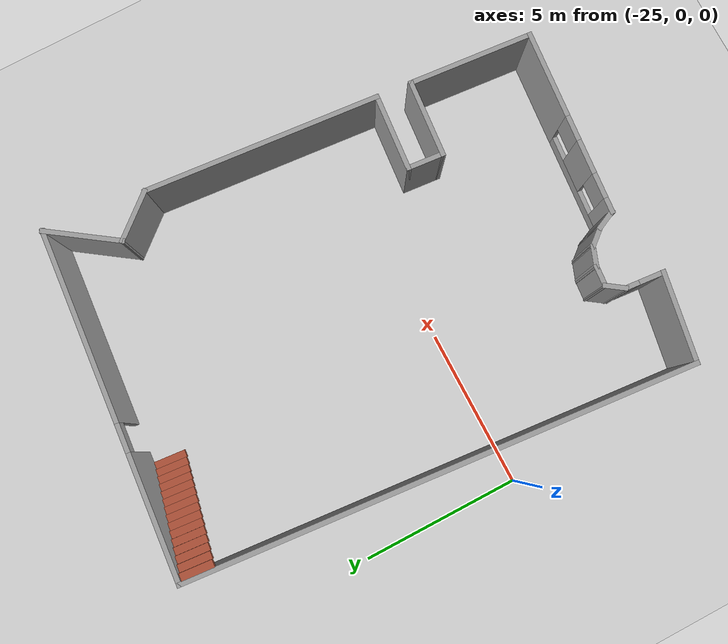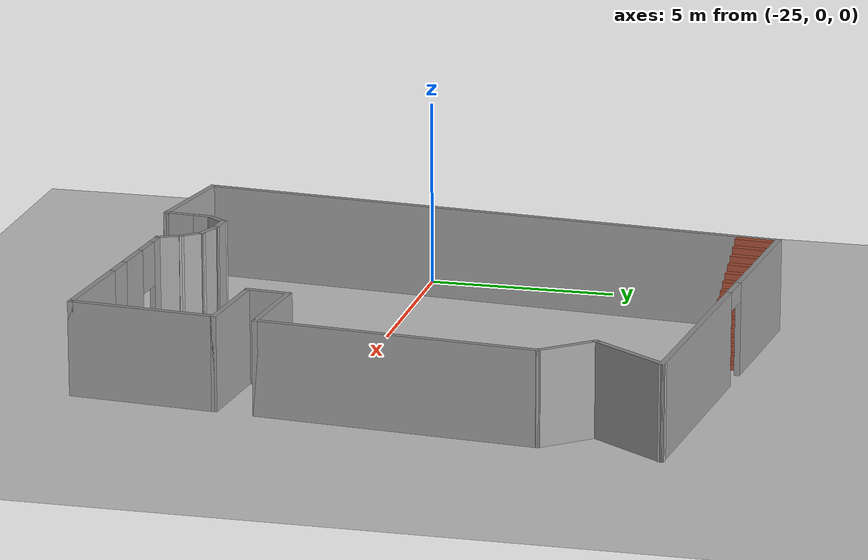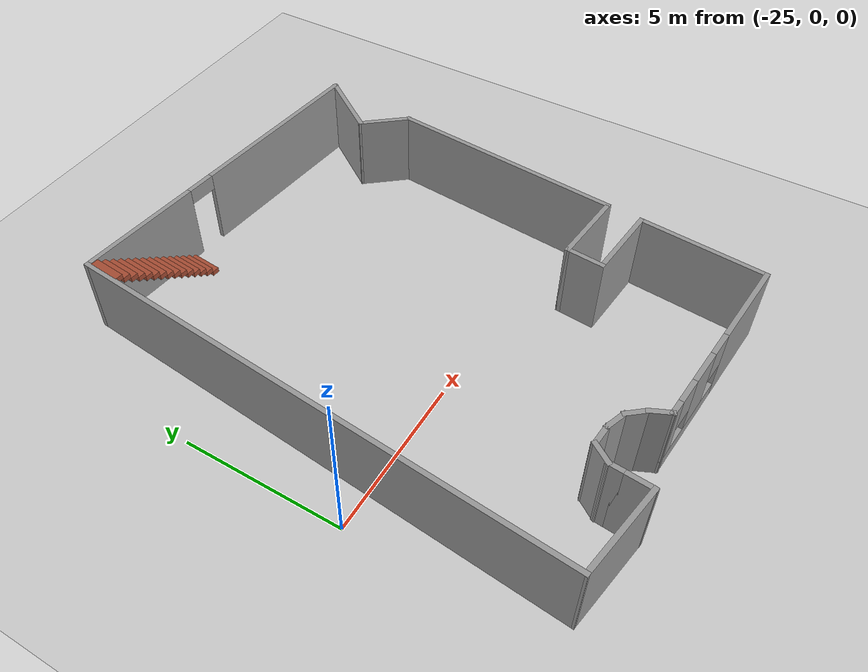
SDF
<sdf version="1.6">
 <world name="default">
  <model name="ground_plane">
   <static>1</static>
   <link name="link">
    <collision name="collision">
     <geometry><plane><normal>0 0 1</normal><size>100 100</size></plane></geometry>
     <surface><friction><ode><mu>100</mu><mu2>50</mu2></ode></friction></surface>
    </collision>
    <visual name="visual">
     <cast_shadows>0</cast_shadows>
     <geometry><plane><normal>0 0 1</normal><size>100 100</size></plane></geometry>
     <material>
      <script><uri>file://media/materials/scripts/gazebo.material</uri><name>Gazebo/Grey</name></script>
     </material>
    </visual>
   </link>
  </model>
  <model name="industria_basica_clone">
   <pose>-18.2141 1.34746 0 0 0 -1.659</pose>
   <link name="Stairs_0">
    <visual name="Stairs_0_Visual_0">
     <pose>-7.4348 -1.99326 0.083333 0 -0 0</pose>
     <geometry><box><size>1 0.233333 0.166667</size></box></geometry>
     <material>
      <script><uri>file://media/materials/scripts/gazebo.material</uri><name>Gazebo/Bricks</name></script>
      <ambient>1 1 1 1</ambient>
     </material>
    </visual>
    <collision name="Stairs_0_Collision_0">
     <geometry><box><size>1 0.233333 0.166667</size></box></geometry>
     <pose>-7.4348 -1.99326 0.083333 0 -0 0</pose>
    </collision>
    <visual name="Stairs_0_Visual_1">
     <pose>-7.4348 -2.22659 0.25 0 -0 0</pose>
     <geometry><box><size>1 0.233333 0.166667</size></box></geometry>
     <material>
      <script><uri>file://media/materials/scripts/gazebo.material</uri><name>Gazebo/Bricks</name></script>
      <ambient>1 1 1 1</ambient>
     </material>
    </visual>
    <collision name="Stairs_0_Collision_1">
     <geometry><box><size>1 0.233333 0.166667</size></box></geometry>
     <pose>-7.4348 -2.22659 0.25 0 -0 0</pose>
    </collision>
    <visual name="Stairs_0_Visual_2">
     <pose>-7.4348 -2.45992 0.416667 0 -0 0</pose>
     <geometry><box><size>1 0.233333 0.166667</size></box></geometry>
     <material>
      <script><uri>file://media/materials/scripts/gazebo.material</uri><name>Gazebo/Bricks</name></script>
      <ambient>1 1 1 1</ambient>
     </material>
    </visual>
    <collision name="Stairs_0_Collision_2">
     <geometry><box><size>1 0.233333 0.166667</size></box></geometry>
     <pose>-7.4348 -2.45992 0.416667 0 -0 0</pose>
    </collision>
    <visual name="Stairs_0_Visual_3">
     <pose>-7.4348 -2.69326 0.583333 0 -0 0</pose>
     <geometry><box><size>1 0.233333 0.166667</size></box></geometry>
     <material>
      <script><uri>file://media/materials/scripts/gazebo.material</uri><name>Gazebo/Bricks</name></script>
      <ambient>1 1 1 1</ambient>
     </material>
    </visual>
    <collision name="Stairs_0_Collision_3">
     <geometry><box><size>1 0.233333 0.166667</size></box></geometry>
     <pose>-7.4348 -2.69326 0.583333 0 -0 0</pose>
    </collision>
    <visual name="Stairs_0_Visual_4">
     <pose>-7.4348 -2.92659 0.75 0 -0 0</pose>
     <geometry><box><size>1 0.233333 0.166667</size></box></geometry>
     <material>
      <script><uri>file://media/materials/scripts/gazebo.material</uri><name>Gazebo/Bricks</name></script>
      <ambient>1 1 1 1</ambient>
     </material>
    </visual>
    <collision name="Stairs_0_Collision_4">
     <geometry><box><size>1 0.233333 0.166667</size></box></geometry>
     <pose>-7.4348 -2.92659 0.75 0 -0 0</pose>
    </collision>
    <visual name="Stairs_0_Visual_5">
     <pose>-7.4348 -3.15992 0.916667 0 -0 0</pose>
     <geometry><box><size>1 0.233333 0.166667</size></box></geometry>
     <material>
      <script><uri>file://media/materials/scripts/gazebo.material</uri><name>Gazebo/Bricks</name></script>
      <ambient>1 1 1 1</ambient>
     </material>
    </visual>
    <collision name="Stairs_0_Collision_5">
     <geometry><box><size>1 0.233333 0.166667</size></box></geometry>
     <pose>-7.4348 -3.15992 0.916667 0 -0 0</pose>
    </collision>
    <visual name="Stairs_0_Visual_6">
     <pose>-7.4348 -3.39326 1.08333 0 -0 0</pose>
     <geometry><box><size>1 0.233333 0.166667</size></box></geometry>
     <material>
      <script><uri>file://media/materials/scripts/gazebo.material</uri><name>Gazebo/Bricks</name></script>
      <ambient>1 1 1 1</ambient>
     </material>
    </visual>
    <collision name="Stairs_0_Collision_6">
     <geometry><box><size>1 0.233333 0.166667</size></box></geometry>
     <pose>-7.4348 -3.39326 1.08333 0 -0 0</pose>
    </collision>
    <visual name="Stairs_0_Visual_7">
     <pose>-7.4348 -3.62659 1.25 0 -0 0</pose>
     <geometry><box><size>1 0.233333 0.166667</size></box></geometry>
     <material>
      <script><uri>file://media/materials/scripts/gazebo.material</uri><name>Gazebo/Bricks</name></script>
      <ambient>1 1 1 1</ambient>
     </material>
    </visual>
    <collision name="Stairs_0_Collision_7">
     <geometry><box><size>1 0.233333 0.166667</size></box></geometry>
     <pose>-7.4348 -3.62659 1.25 0 -0 0</pose>
    </collision>
    <visual name="Stairs_0_Visual_8">
     <pose>-7.4348 -3.85992 1.41667 0 -0 0</pose>
     <geometry><box><size>1 0.233333 0.166667</size></box></geometry>
     <material>
      <script><uri>file://media/materials/scripts/gazebo.material</uri><name>Gazebo/Bricks</name></script>
      <ambient>1 1 1 1</ambient>
     </material>
    </visual>
    <collision name="Stairs_0_Collision_8">
     <geometry><box><size>1 0.233333 0.166667</size></box></geometry>
     <pose>-7.4348 -3.85992 1.41667 0 -0 0</pose>
    </collision>
    <visual name="Stairs_0_Visual_9">
     <pose>-7.4348 -4.09326 1.58333 0 -0 0</pose>
     <geometry><box><size>1 0.233333 0.166667</size></box></geometry>
     <material>
      <script><uri>file://media/materials/scripts/gazebo.material</uri><name>Gazebo/Bricks</name></script>
      <ambient>1 1 1 1</ambient>
     </material>
    </visual>
    <collision name="Stairs_0_Collision_9">
     <geometry><box><size>1 0.233333 0.166667</size></box></geometry>
     <pose>-7.4348 -4.09326 1.58333 0 -0 0</pose>
    </collision>
    <visual name="Stairs_0_Visual_10">
     <pose>-7.4348 -4.32659 1.75 0 -0 0</pose>
     <geometry><box><size>1 0.233333 0.166667</size></box></geometry>
     <material>
      <script><uri>file://media/materials/scripts/gazebo.material</uri><name>Gazebo/Bricks</name></script>
      <ambient>1 1 1 1</ambient>
     </material>
    </visual>
    <collision name="Stairs_0_Collision_10">
     <geometry><box><size>1 0.233333 0.166667</size></box></geometry>
     <pose>-7.4348 -4.32659 1.75 0 -0 0</pose>
    </collision>
    <visual name="Stairs_0_Visual_11">
     <pose>-7.4348 -4.55992 1.91667 0 -0 0</pose>
     <geometry><box><size>1 0.233333 0.166667</size></box></geometry>
     <material>
      <script><uri>file://media/materials/scripts/gazebo.material</uri><name>Gazebo/Bricks</name></script>
      <ambient>1 1 1 1</ambient>
     </material>
    </visual>
    <collision name="Stairs_0_Collision_11">
     <geometry><box><size>1 0.233333 0.166667</size></box></geometry>
     <pose>-7.4348 -4.55992 1.91667 0 -0 0</pose>
    </collision>
    <visual name="Stairs_0_Visual_12">
     <pose>-7.4348 -4.79326 2.08333 0 -0 0</pose>
     <geometry><box><size>1 0.233333 0.166667</size></box></geometry>
     <material>
      <script><uri>file://media/materials/scripts/gazebo.material</uri><name>Gazebo/Bricks</name></script>
      <ambient>1 1 1 1</ambient>
     </material>
    </visual>
    <collision name="Stairs_0_Collision_12">
     <geometry><box><size>1 0.233333 0.166667</size></box></geometry>
     <pose>-7.4348 -4.79326 2.08333 0 -0 0</pose>
    </collision>
    <visual name="Stairs_0_Visual_13">
     <pose>-7.4348 -5.02659 2.25 0 -0 0</pose>
     <geometry><box><size>1 0.233333 0.166667</size></box></geometry>
     <material>
      <script><uri>file://media/materials/scripts/gazebo.material</uri><name>Gazebo/Bricks</name></script>
      <ambient>1 1 1 1</ambient>
     </material>
    </visual>
    <collision name="Stairs_0_Collision_13">
     <geometry><box><size>1 0.233333 0.166667</size></box></geometry>
     <pose>-7.4348 -5.02659 2.25 0 -0 0</pose>
    </collision>
    <visual name="Stairs_0_Visual_14">
     <pose>-7.4348 -5.25992 2.41667 0 -0 0</pose>
     <geometry><box><size>1 0.233333 0.166667</size></box></geometry>
     <material>
      <script><uri>file://media/materials/scripts/gazebo.material</uri><name>Gazebo/Bricks</name></script>
      <ambient>1 1 1 1</ambient>
     </material>
    </visual>
    <collision name="Stairs_0_Collision_14">
     <geometry><box><size>1 0.233333 0.166667</size></box></geometry>
     <pose>-7.4348 -5.25992 2.41667 0 -0 0</pose>
    </collision>
   </link>
   <link name="Wall_10">
    <collision name="Wall_10_Collision">
     <geometry><box><size>7.5 0.15 2.5</size></box></geometry>
     <pose>0 0 1.25 0 -0 0</pose>
    </collision>
    <visual name="Wall_10_Visual">
     <pose>0 0 1.25 0 -0 0</pose>
     <geometry><box><size>7.5 0.15 2.5</size></box></geometry>
     <material>
      <script><uri>file://media/materials/scripts/gazebo.material</uri><name>Gazebo/Grey</name></script>
      <ambient>1 1 1 1</ambient>
     </material>
    </visual>
    <pose>-1.19131 5.37072 0 0 -0 0</pose>
   </link>
   <link name="Wall_11">
    <collision name="Wall_11_Collision">
     <geometry><box><size>2.5 0.15 2.5</size></box></geometry>
     <pose>0 0 1.25 0 -0 0</pose>
    </collision>
    <visual name="Wall_11_Visual">
     <pose>0 0 1.25 0 -0 0</pose>
     <geometry><box><size>2.5 0.15 2.5</size></box></geometry>
     <material>
      <script><uri>file://media/materials/scripts/gazebo.material</uri><name>Gazebo/Grey</name></script>
      <ambient>1 1 1 1</ambient>
     </material>
    </visual>
    <pose>2.48369 4.19572 0 0 0 -1.5708</pose>
   </link>
   <link name="Wall_12">
    <collision name="Wall_12_Collision">
     <geometry><box><size>1.25 0.15 2.5</size></box></geometry>
     <pose>0 0 1.25 0 -0 0</pose>
    </collision>
    <visual name="Wall_12_Visual">
     <pose>0 0 1.25 0 -0 0</pose>
     <geometry><box><size>1.25 0.15 2.5</size></box></geometry>
     <material>
      <script><uri>file://media/materials/scripts/gazebo.material</uri><name>Gazebo/Grey</name></script>
      <ambient>1 1 1 1</ambient>
     </material>
    </visual>
    <pose>3.03369 3.02072 0 0 -0 0</pose>
   </link>
   <link name="Wall_13">
    <collision name="Wall_13_Collision">
     <geometry><box><size>2.5 0.15 2.5</size></box></geometry>
     <pose>0 0 1.25 0 -0 0</pose>
    </collision>
    <visual name="Wall_13_Visual">
     <pose>0 0 1.25 0 -0 0</pose>
     <geometry><box><size>2.5 0.15 2.5</size></box></geometry>
     <material>
      <script><uri>file://media/materials/scripts/gazebo.material</uri><name>Gazebo/Grey</name></script>
      <ambient>1 1 1 1</ambient>
     </material>
    </visual>
    <pose>3.58369 4.19572 0 0 -0 1.5708</pose>
   </link>
   <link name="Wall_14">
    <collision name="Wall_14_Collision">
     <geometry><box><size>4 0.15 2.5</size></box></geometry>
     <pose>0 0 1.25 0 -0 0</pose>
    </collision>
    <visual name="Wall_14_Visual">
     <pose>0 0 1.25 0 -0 0</pose>
     <geometry><box><size>4 0.15 2.5</size></box></geometry>
     <material>
      <script><uri>file://media/materials/scripts/gazebo.material</uri><name>Gazebo/Grey</name></script>
      <ambient>1 1 1 1</ambient>
     </material>
    </visual>
    <pose>5.50869 5.37072 0 0 -0 0</pose>
   </link>
   <link name="Wall_15">
    <pose>7.43369 2.44572 0 0 0 -1.5708</pose>
    <visual name="Wall_15_Visual_0">
     <pose>-1.60274 0 1.25 0 -0 0</pose>
     <geometry><box><size>2.79452 0.15 2.5</size></box></geometry>
     <material>
      <script><uri>file://media/materials/scripts/gazebo.material</uri><name>Gazebo/Grey</name></script>
      <ambient>1 1 1 1</ambient>
     </material>
    </visual>
    <collision name="Wall_15_Collision_0">
     <geometry><box><size>2.79452 0.15 2.5</size></box></geometry>
     <pose>-1.60274 0 1.25 0 -0 0</pose>
    </collision>
    <visual name="Wall_15_Visual_1">
     <pose>1.39726 0 0.25 0 -0 0</pose>
     <geometry><box><size>3.20548 0.15 0.5</size></box></geometry>
     <material>
      <script><uri>file://media/materials/scripts/gazebo.material</uri><name>Gazebo/Grey</name></script>
      <ambient>1 1 1 1</ambient>
     </material>
    </visual>
    <collision name="Wall_15_Collision_1">
     <geometry><box><size>3.20548 0.15 0.5</size></box></geometry>
     <pose>1.39726 0 0.25 0 -0 0</pose>
    </collision>
    <visual name="Wall_15_Visual_2">
     <pose>1.13916 0 1.5 0 -0 0</pose>
     <geometry><box><size>1.08927 0.15 2</size></box></geometry>
     <material>
      <script><uri>file://media/materials/scripts/gazebo.material</uri><name>Gazebo/Grey</name></script>
      <ambient>1 1 1 1</ambient>
     </material>
    </visual>
    <collision name="Wall_15_Collision_2">
     <geometry><box><size>1.08927 0.15 2</size></box></geometry>
     <pose>1.13916 0 1.5 0 -0 0</pose>
    </collision>
    <visual name="Wall_15_Visual_3">
     <pose>2.7419 0 1.5 0 -0 0</pose>
     <geometry><box><size>0.516207 0.15 2</size></box></geometry>
     <material>
      <script><uri>file://media/materials/scripts/gazebo.material</uri><name>Gazebo/Grey</name></script>
      <ambient>1 1 1 1</ambient>
     </material>
    </visual>
    <collision name="Wall_15_Collision_3">
     <geometry><box><size>0.516207 0.15 2</size></box></geometry>
     <pose>2.7419 0 1.5 0 -0 0</pose>
    </collision>
    <visual name="Wall_15_Visual_4">
     <pose>0.194521 0 1.9 0 -0 0</pose>
     <geometry><box><size>0.8 0.15 1.2</size></box></geometry>
     <material>
      <script><uri>file://media/materials/scripts/gazebo.material</uri><name>Gazebo/Grey</name></script>
      <ambient>1 1 1 1</ambient>
     </material>
    </visual>
    <collision name="Wall_15_Collision_4">
     <geometry><box><size>0.8 0.15 1.2</size></box></geometry>
     <pose>0.194521 0 1.9 0 -0 0</pose>
    </collision>
    <visual name="Wall_15_Visual_5">
     <pose>2.08379 0 1.9 0 -0 0</pose>
     <geometry><box><size>0.8 0.15 1.2</size></box></geometry>
     <material>
      <script><uri>file://media/materials/scripts/gazebo.material</uri><name>Gazebo/Grey</name></script>
      <ambient>1 1 1 1</ambient>
     </material>
    </visual>
    <collision name="Wall_15_Collision_5">
     <geometry><box><size>0.8 0.15 1.2</size></box></geometry>
     <pose>2.08379 0 1.9 0 -0 0</pose>
    </collision>
   </link>
   <link name="Wall_16">
    <collision name="Wall_16_Collision">
     <geometry><box><size>0.75 0.15 2.5</size></box></geometry>
     <pose>0 0 1.25 0 -0 0</pose>
    </collision>
    <visual name="Wall_16_Visual">
     <pose>0 0 1.25 0 -0 0</pose>
     <geometry><box><size>0.75 0.15 2.5</size></box></geometry>
     <material>
      <script><uri>file://media/materials/scripts/gazebo.material</uri><name>Gazebo/Grey</name></script>
      <ambient>1 1 1 1</ambient>
     </material>
    </visual>
    <pose>7.17388 -0.629277 0 0 0 -2.61799</pose>
   </link>
   <link name="Wall_17">
    <collision name="Wall_17_Collision">
     <geometry><box><size>0.75 0.15 2.5</size></box></geometry>
     <pose>0 0 1.25 0 -0 0</pose>
    </collision>
    <visual name="Wall_17_Visual">
     <pose>0 0 1.25 0 -0 0</pose>
     <geometry><box><size>0.75 0.15 2.5</size></box></geometry>
     <material>
      <script><uri>file://media/materials/scripts/gazebo.material</uri><name>Gazebo/Grey</name></script>
      <ambient>1 1 1 1</ambient>
     </material>
    </visual>
    <pose>6.70194 -0.991409 0 0 0 -2.35619</pose>
   </link>
   <link name="Wall_18">
    <collision name="Wall_18_Collision">
     <geometry><box><size>0.75 0.15 2.5</size></box></geometry>
     <pose>0 0 1.25 0 -0 0</pose>
    </collision>
    <visual name="Wall_18_Visual">
     <pose>0 0 1.25 0 -0 0</pose>
     <geometry><box><size>0.75 0.15 2.5</size></box></geometry>
     <material>
      <script><uri>file://media/materials/scripts/gazebo.material</uri><name>Gazebo/Grey</name></script>
      <ambient>1 1 1 1</ambient>
     </material>
    </visual>
    <pose>6.41217 -1.49332 0 0 0 -1.8326</pose>
   </link>
   <link name="Wall_19">
    <collision name="Wall_19_Collision">
     <geometry><box><size>0.75 0.15 2.5</size></box></geometry>
     <pose>0 0 1.25 0 -0 0</pose>
    </collision>
    <visual name="Wall_19_Visual">
     <pose>0 0 1.25 0 -0 0</pose>
     <geometry><box><size>0.75 0.15 2.5</size></box></geometry>
     <material>
      <script><uri>file://media/materials/scripts/gazebo.material</uri><name>Gazebo/Grey</name></script>
      <ambient>1 1 1 1</ambient>
     </material>
    </visual>
    <pose>6.33452 -2.0831 0 0 0 -1.5708</pose>
   </link>
   <link name="Wall_20">
    <collision name="Wall_20_Collision">
     <geometry><box><size>0.75 0.15 2.5</size></box></geometry>
     <pose>0 0 1.25 0 -0 0</pose>
    </collision>
    <visual name="Wall_20_Visual">
     <pose>0 0 1.25 0 -0 0</pose>
     <geometry><box><size>0.75 0.15 2.5</size></box></geometry>
     <material>
      <script><uri>file://media/materials/scripts/gazebo.material</uri><name>Gazebo/Grey</name></script>
      <ambient>1 1 1 1</ambient>
     </material>
    </visual>
    <pose>6.59433 -2.5331 0 0 0 -0.523599</pose>
   </link>
   <link name="Wall_21">
    <collision name="Wall_21_Collision">
     <geometry><box><size>0.5 0.15 2.5</size></box></geometry>
     <pose>0 0 1.25 0 -0 0</pose>
    </collision>
    <visual name="Wall_21_Visual">
     <pose>0 0 1.25 0 -0 0</pose>
     <geometry><box><size>0.5 0.15 2.5</size></box></geometry>
     <material>
      <script><uri>file://media/materials/scripts/gazebo.material</uri><name>Gazebo/Grey</name></script>
      <ambient>1 1 1 1</ambient>
     </material>
    </visual>
    <pose>7.02914 -2.6831 0 0 -0 0</pose>
   </link>
   <link name="Wall_22">
    <collision name="Wall_22_Collision">
     <geometry><box><size>1 0.15 2.5</size></box></geometry>
     <pose>0 0 1.25 0 -0 0</pose>
    </collision>
    <visual name="Wall_22_Visual">
     <pose>0 0 1.25 0 -0 0</pose>
     <geometry><box><size>1 0.15 2.5</size></box></geometry>
     <material>
      <script><uri>file://media/materials/scripts/gazebo.material</uri><name>Gazebo/Grey</name></script>
      <ambient>1 1 1 1</ambient>
     </material>
    </visual>
    <pose>7.62913 -2.6831 0 0 -0 0</pose>
   </link>
   <link name="Wall_23">
    <collision name="Wall_23_Collision">
     <geometry><box><size>2.91273 0.15 2.5</size></box></geometry>
     <pose>0 0 1.25 0 -0 0</pose>
    </collision>
    <visual name="Wall_23_Visual">
     <pose>0 0 1.25 0 -0 0</pose>
     <geometry><box><size>2.91273 0.15 2.5</size></box></geometry>
     <material>
      <script><uri>file://media/materials/scripts/gazebo.material</uri><name>Gazebo/Grey</name></script>
      <ambient>1 1 1 1</ambient>
     </material>
    </visual>
    <pose>7.93565 -4.05937 0 0 0 -1.65668</pose>
   </link>
   <link name="Wall_4">
    <pose>-8.03284 -0.010648 0 0 0 -1.5708</pose>
    <visual name="Wall_4_Visual_0">
     <pose>-2.45105 0 1.25 0 -0 0</pose>
     <geometry><box><size>6.09789 0.15 2.5</size></box></geometry>
     <material>
      <script><uri>file://media/materials/scripts/gazebo.material</uri><name>Gazebo/Grey</name></script>
      <ambient>1 1 1 1</ambient>
     </material>
    </visual>
    <collision name="Wall_4_Collision_0">
     <geometry><box><size>6.09789 0.15 2.5</size></box></geometry>
     <pose>-2.45105 0 1.25 0 -0 0</pose>
    </collision>
    <visual name="Wall_4_Visual_1">
     <pose>3.49895 0 1.25 0 -0 0</pose>
     <geometry><box><size>4.00211 0.15 2.5</size></box></geometry>
     <material>
      <script><uri>file://media/materials/scripts/gazebo.material</uri><name>Gazebo/Grey</name></script>
      <ambient>1 1 1 1</ambient>
     </material>
    </visual>
    <collision name="Wall_4_Collision_1">
     <geometry><box><size>4.00211 0.15 2.5</size></box></geometry>
     <pose>3.49895 0 1.25 0 -0 0</pose>
    </collision>
    <visual name="Wall_4_Visual_2">
     <pose>1.04789 0 2.25 0 -0 0</pose>
     <geometry><box><size>0.9 0.15 0.5</size></box></geometry>
     <material>
      <script><uri>file://media/materials/scripts/gazebo.material</uri><name>Gazebo/Grey</name></script>
      <ambient>1 1 1 1</ambient>
     </material>
    </visual>
    <collision name="Wall_4_Collision_2">
     <geometry><box><size>0.9 0.15 0.5</size></box></geometry>
     <pose>1.04789 0 2.25 0 -0 0</pose>
    </collision>
   </link>
   <link name="Wall_5">
    <collision name="Wall_5_Collision">
     <geometry><box><size>16 0.15 2.5</size></box></geometry>
     <pose>0 0 1.25 0 -0 0</pose>
    </collision>
    <visual name="Wall_5_Visual">
     <pose>0 0 1.25 0 -0 0</pose>
     <geometry><box><size>16 0.15 2.5</size></box></geometry>
     <material>
      <script><uri>file://media/materials/scripts/gazebo.material</uri><name>Gazebo/Grey</name></script>
      <ambient>1 1 1 1</ambient>
     </material>
    </visual>
    <pose>-0.10784 -5.43565 0 0 -0 0</pose>
   </link>
   <link name="Wall_8">
    <collision name="Wall_8_Collision">
     <geometry><box><size>2.5 0.15 2.5</size></box></geometry>
     <pose>0 0 1.25 0 -0 0</pose>
    </collision>
    <visual name="Wall_8_Visual">
     <pose>0 0 1.25 0 -0 0</pose>
     <geometry><box><size>2.5 0.15 2.5</size></box></geometry>
     <material>
      <script><uri>file://media/materials/scripts/gazebo.material</uri><name>Gazebo/Grey</name></script>
      <ambient>1 1 1 1</ambient>
     </material>
    </visual>
    <pose>-7.01526 4.82685 0 0 0 -0.523599</pose>
   </link>
   <link name="Wall_9">
    <collision name="Wall_9_Collision">
     <geometry><box><size>1.75 0.15 2.5</size></box></geometry>
     <pose>0 0 1.25 0 -0 0</pose>
    </collision>
    <visual name="Wall_9_Visual">
     <pose>0 0 1.25 0 -0 0</pose>
     <geometry><box><size>1.75 0.15 2.5</size></box></geometry>
     <material>
      <script><uri>file://media/materials/scripts/gazebo.material</uri><name>Gazebo/Grey</name></script>
      <ambient>1 1 1 1</ambient>
     </material>
    </visual>
    <pose>-5.43199 4.80504 0 0 -0 0.785398</pose>
   </link>
   <static>1</static>
  </model>
 </world>
</sdf>
